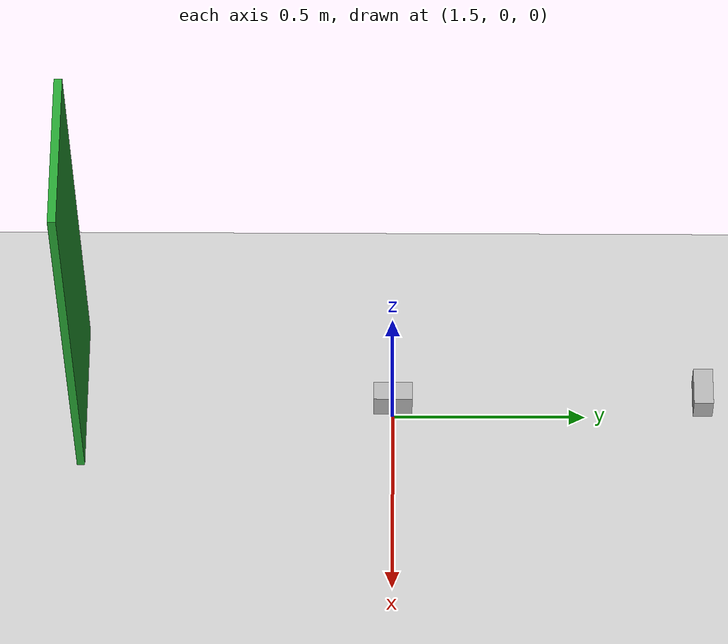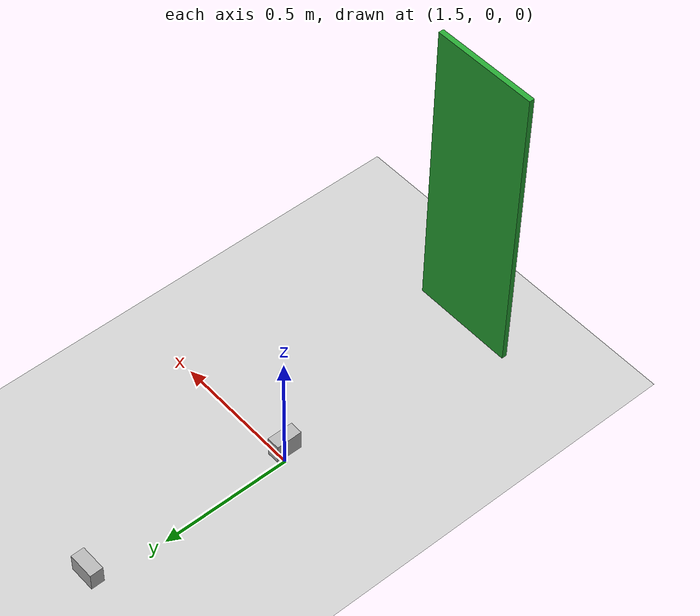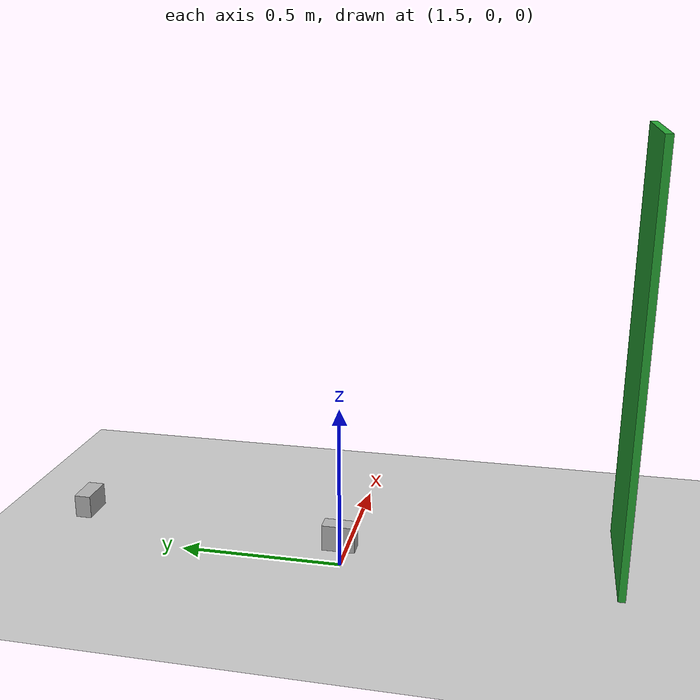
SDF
<?xml version="1.0"?>

<sdf version="1.6">
  <world name="sorting_world">

    <include>
      <uri>model://ground_plane</uri>
    </include>

    <include>
      <uri>model://sun</uri>
    </include>

    <include>
      <uri>model://red_box</uri>
      <name>red_box_1</name>
      <pose>1.5 0.0 0.1 0 0 0</pose>
    </include>

    <include>
      <uri>model://blue_box</uri>
      <name>blue_box_1</name>
      <pose>1.5 0.8 0.1 0 0 0</pose>
    </include>

    <include>
      <uri>model://green_box</uri>
      <name>green_box_1</name>
      <pose>1.5 -0.8 0.1 0 0 0</pose>
    </include>

  </world>
</sdf>

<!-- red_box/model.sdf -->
<sdf version='1.6'>
  <model name='red_box'>
    <link name='link'>
      <inertial>
        <mass>0.01</mass>
        <inertia>
          <ixx>0</ixx>
          <ixy>0</ixy>
          <ixz>0</ixz>
          <iyy>0</iyy>
          <iyz>0</iyz>
          <izz>0</izz>
        </inertia>
        <pose frame=''>0 0 0 0 -0 0</pose>
      </inertial>
      <self_collide>0</self_collide>
      <enable_wind>0</enable_wind>
      <kinematic>0</kinematic>
      <pose frame=''>0 0 0 0 0 0</pose>
      <gravity>1</gravity>
      <visual name='visual'>
        <geometry>
          <box>
            <size>0.05 0.1 0.08</size>
          </box>
        </geometry>
        <material>
          <shader type='pixel'>
            <normal_map>__default__</normal_map>
          </shader>
          <ambient>1 0 0 1</ambient>
          <diffuse>0.7 0.7 0.7 1</diffuse>
          <specular>0.01 0.01 0.01 1</specular>
          <emissive>0 0 0 1</emissive>
        </material>
        <pose frame=''>0 0 0 0 -0 0</pose>
        <transparency>0</transparency>
        <cast_shadows>1</cast_shadows>
      </visual>
      <collision name='collision'>
        <laser_retro>0</laser_retro>
        <max_contacts>10</max_contacts>
        <pose frame=''>0 0 0 0 -0 0</pose>
        <geometry>
          <box>
            <size>0.05 0.1 0.08</size>
          </box>
        </geometry>
        <surface>
          <friction>
            <ode>
              <mu>1</mu>
              <mu2>1</mu2>
              <fdir1>0 0 0</fdir1>
              <slip1>0</slip1>
              <slip2>0</slip2>
            </ode>
            <torsional>
              <coefficient>1</coefficient>
              <patch_radius>0</patch_radius>
              <surface_radius>0</surface_radius>
              <use_patch_radius>1</use_patch_radius>
              <ode>
                <slip>0</slip>
              </ode>
            </torsional>
          </friction>
          <bounce>
            <restitution_coefficient>0</restitution_coefficient>
            <threshold>1e+06</threshold>
          </bounce>
          <contact>
            <collide_without_contact>0</collide_without_contact>
            <collide_without_contact_bitmask>1</collide_without_contact_bitmask>
            <collide_bitmask>1</collide_bitmask>
            <ode>
              <soft_cfm>0</soft_cfm>
              <soft_erp>0.2</soft_erp>
              <kp>1e+13</kp>
              <kd>1</kd>
              <max_vel>0.01</max_vel>
              <min_depth>0</min_depth>
            </ode>
            <bullet>
              <split_impulse>1</split_impulse>
              <split_impulse_penetration_threshold>-0.01</split_impulse_penetration_threshold>
              <soft_cfm>0</soft_cfm>
              <soft_erp>0.2</soft_erp>
              <kp>1e+13</kp>
              <kd>1</kd>
            </bullet>
          </contact>
        </surface>
      </collision>
    </link>
    <static>0</static>
    <allow_auto_disable>1</allow_auto_disable>
  </model>
</sdf>

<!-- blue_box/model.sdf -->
<sdf version='1.6'>
  <model name='blue_box'>
    <link name='link'>
      <inertial>
        <mass>0.01</mass>
        <inertia>
          <ixx>0.166667</ixx>
          <ixy>0</ixy>
          <ixz>0</ixz>
          <iyy>0.166667</iyy>
          <iyz>0</iyz>
          <izz>0.166667</izz>
        </inertia>
        <pose frame=''>0 0 0 0 -0 0</pose>
      </inertial>
      <self_collide>0</self_collide>
      <enable_wind>0</enable_wind>
      <kinematic>0</kinematic>
      <pose frame=''>0 -0 0.035 0 -0 0</pose>
      <gravity>1</gravity>
      <visual name='visual'>
        <geometry>
          <box>
            <size>0.1 0.05 0.07</size>
          </box>
        </geometry>
        <material>
          <shader type='pixel'>
            <normal_map>__default__</normal_map>
          </shader>
          <ambient>0 0 1 1</ambient>
          <diffuse>0.7 0.7 0.7 1</diffuse>
          <specular>0.01 0.01 0.01 1</specular>
          <emissive>0 0 0 1</emissive>
        </material>
        <pose frame=''>0 0 0 0 -0 0</pose>
        <transparency>0</transparency>
        <cast_shadows>1</cast_shadows>
      </visual>
      <collision name='collision'>
        <laser_retro>0</laser_retro>
        <max_contacts>10</max_contacts>
        <pose frame=''>0 0 0 0 -0 0</pose>
        <geometry>
          <box>
            <size>0.1 0.05 0.07</size>
          </box>
        </geometry>
        <surface>
          <friction>
            <ode>
              <mu>1</mu>
              <mu2>1</mu2>
              <fdir1>0 0 0</fdir1>
              <slip1>0</slip1>
              <slip2>0</slip2>
            </ode>
            <torsional>
              <coefficient>1</coefficient>
              <patch_radius>0</patch_radius>
              <surface_radius>0</surface_radius>
              <use_patch_radius>1</use_patch_radius>
              <ode>
                <slip>0</slip>
              </ode>
            </torsional>
          </friction>
          <bounce>
            <restitution_coefficient>0</restitution_coefficient>
            <threshold>1e+06</threshold>
          </bounce>
          <contact>
            <collide_without_contact>0</collide_without_contact>
            <collide_without_contact_bitmask>1</collide_without_contact_bitmask>
            <collide_bitmask>1</collide_bitmask>
            <ode>
              <soft_cfm>0</soft_cfm>
              <soft_erp>0.2</soft_erp>
              <kp>1e+13</kp>
              <kd>1</kd>
              <max_vel>0.01</max_vel>
              <min_depth>0</min_depth>
            </ode>
            <bullet>
              <split_impulse>1</split_impulse>
              <split_impulse_penetration_threshold>-0.01</split_impulse_penetration_threshold>
              <soft_cfm>0</soft_cfm>
              <soft_erp>0.2</soft_erp>
              <kp>1e+13</kp>
              <kd>1</kd>
            </bullet>
          </contact>
        </surface>
      </collision>
    </link>
    <static>0</static>
    <allow_auto_disable>1</allow_auto_disable>
  </model>
</sdf>

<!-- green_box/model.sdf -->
<sdf version="1.6">
  <model name="green_box">
    <static>true</static>
    <link name="box">
      <pose>0 0 0.60 0 0 0</pose>
      <collision name="collision">
        <geometry>
          <box>
            <size>0.40 0.020 1.20</size>
          </box>
        </geometry>
      </collision>
      <visual name="visual">
        <geometry>
          <box>
            <size>0.40 0.020 1.20</size>
          </box>
        </geometry>
        <material>
          <script>
            <uri>model://green_box/materials/scripts</uri>
            <uri>model://green_box/materials/textures</uri>
            <name>green_box</name>
          </script>
        </material>
      </visual>
    </link>
  </model>
</sdf>
